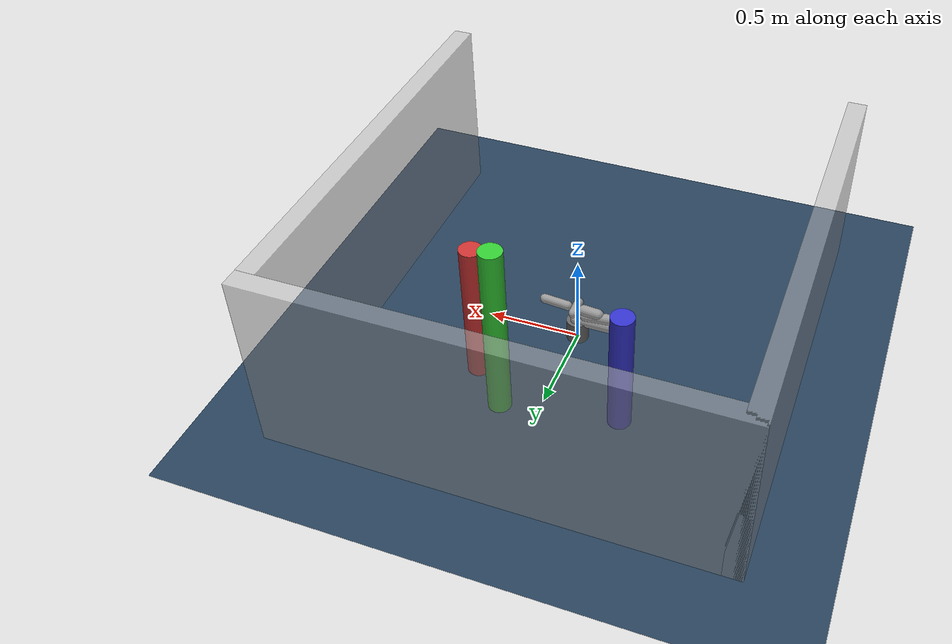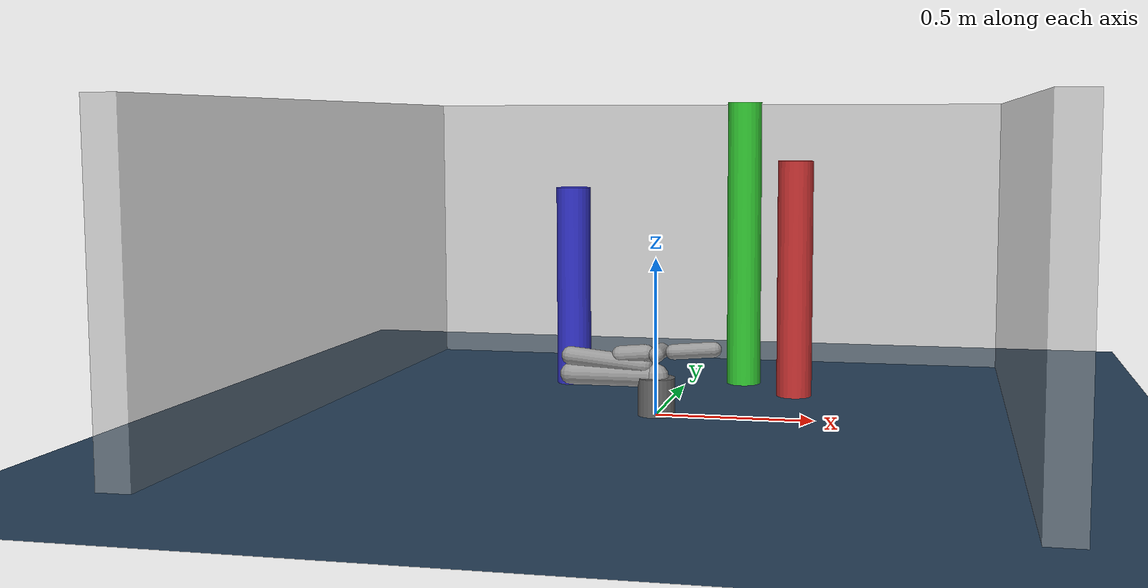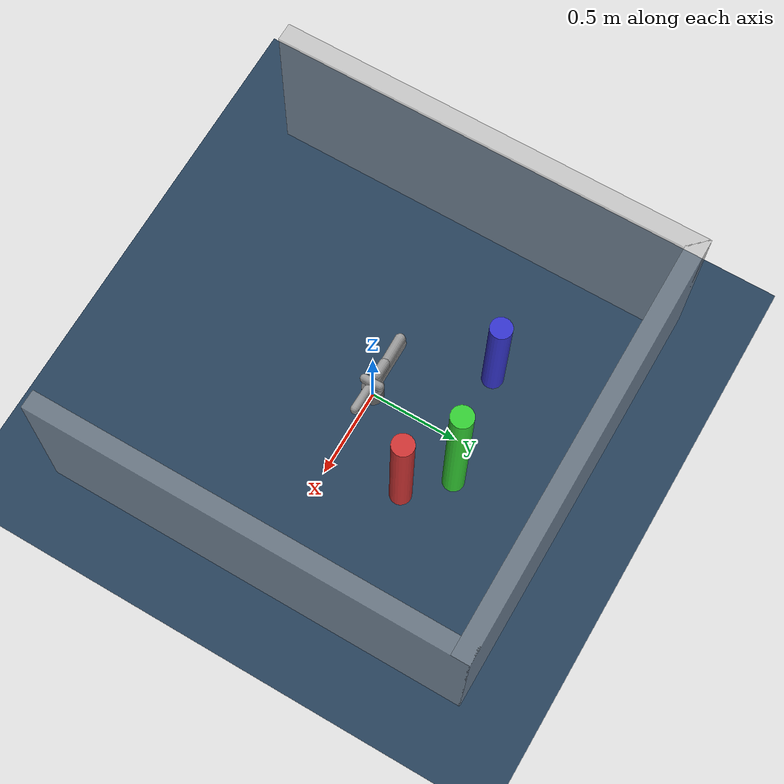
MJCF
<mujoco model="piper_scene_with_obstacles">
  <include file="piper.xml"/>

  <statistic center="0 0 0.1" extent="0.4"/>

  <visual>
    <headlight diffuse="0.6 0.6 0.6" ambient="0.3 0.3 0.3" specular="0 0 0"/>
    <rgba haze="0.15 0.25 0.35 1"/>
    <global azimuth="120" elevation="-20"/>
  </visual>

  <asset>
    <texture type="skybox" builtin="gradient" rgb1="0.3 0.5 0.7" rgb2="0 0 0" width="512" height="3072"/>
    <texture type="2d" name="groundplane" builtin="checker" mark="edge" rgb1="0.2 0.3 0.4" rgb2="0.1 0.2 0.3"
      markrgb="0.8 0.8 0.8" width="300" height="300"/>
    <material name="groundplane" texture="groundplane" texuniform="true" texrepeat="5 5" reflectance="0.2"/>
    <material name="obstacle_red" rgba="0.8 0.2 0.2 1"/>
    <material name="obstacle_blue" rgba="0.2 0.2 0.8 1"/>
    <material name="obstacle_green" rgba="0.2 0.8 0.2 1"/>
  </asset>

  <worldbody>
    <light pos="0 0 1.5" dir="0 0 -1" directional="true"/>
    <geom name="floor" size="0 0 0.05" type="plane" material="groundplane"/>

    <body name="wall_y_pos" pos="0 1.15 0.5">
      <geom name="wall_y" type="box" size="1.2 0.05 0.5" rgba="0.7 0.7 0.7 0.5"/>
    </body>

    <body name="wall_x_pos" pos="1.15 0 0.5">
      <geom name="wall_x_pos" type="box" size="0.05 1.2 0.5" rgba="0.7 0.7 0.7 0.5"/>
    </body>

    <body name="wall_x_neg" pos="-1.15 0 0.5">
      <geom name="wall_x_neg" type="box" size="0.05 1.2 0.5" rgba="0.7 0.7 0.7 0.5"/>
    </body>

    <body name="pillar1" pos="0.4 0.4 0.4">
      <geom name="pillar1" type="cylinder" size="0.06 0.4" material="obstacle_red"/>
    </body>

    <body name="pillar2" pos="-0.4 0.5 0.35">
      <geom name="pillar2" type="cylinder" size="0.06 0.35" material="obstacle_blue"/>
    </body>

    <body name="pillar3" pos="0.2 0.6 0.5">
      <geom name="pillar3" type="cylinder" size="0.06 0.5" material="obstacle_green"/>
    </body>
  </worldbody>
</mujoco>

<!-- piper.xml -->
<mujoco model="piper_description">
  <compiler angle="radian"/>

  <option integrator="implicitfast"/>

  <default>
    <default class="piper">
      <joint frictionloss="0.3" armature="0.005"/>
      <position inheritrange="1" forcerange="-100 100"/>
      <geom type="capsule" rgba="0.6 0.6 0.6 1"/>
    </default>
  </default>

  <worldbody>
    <light name="spotlight" mode="targetbodycom" target="link6" pos="0 0 2"/>
    <body name="base_link" childclass="piper" gravcomp="1">
      <inertial pos="0 0 0.04" mass="0.16" diaginertia="0.0002 0.0002 0.0002"/>
      <geom type="cylinder" size="0.06 0.06" pos="0 0 0.06" rgba="0.4 0.4 0.4 1"/>
      <body name="link1" pos="0 0 0.123" quat="0.707105 0 0 -0.707108" gravcomp="1">
        <inertial pos="0 0 -0.01" mass="0.1" diaginertia="0.00008 0.00008 0.00008"/>
        <joint name="joint1" axis="0 0 1" range="-2.618 2.618"/>
        <geom size="0.04 0.05" pos="0 0 -0.05"/>
        <body name="link2" quat="0.499998 0.5 -0.500002 -0.5" gravcomp="1">
          <inertial pos="0.15 0 0" mass="0.29" diaginertia="0.001 0.001 0.0001"/>
          <joint name="joint2" axis="0 0 1" range="0 3.14"/>
          <geom size="0.035 0.14" pos="0.14 0 0" quat="0.707105 0 0.707108 0"/>
          <body name="link3" pos="0.28358 0.028726 0" quat="0.998726 0 0 0.0504536" gravcomp="1">
            <inertial pos="-0.1 0.035 0" mass="0.29" diaginertia="0.0002 0.0002 0.0001"/>
            <joint name="joint3" axis="0 0 1" range="-2.697 0"/>
            <geom size="0.03 0.12" pos="-0.12 0.03 0" quat="0.707105 0 0.707108 0"/>
            <body name="link4" pos="-0.24221 0.068514 0" quat="0.544767 -0.544769 -0.450809 0.450808" gravcomp="1">
              <inertial pos="0 0 -0.005" mass="0.13" diaginertia="0.00004 0.00004 0.00004"/>
              <joint name="joint4" axis="0 0 1" range="-1.832 1.832"/>
              <geom size="0.03 0.04" pos="0 0 -0.04"/>
              <body name="link5" quat="0.707105 0.707108 0 0" gravcomp="1">
                <inertial pos="0 0.057 0" mass="0.14" diaginertia="0.001 0.001 0.001"/>
                <joint name="joint5" axis="0 0 1" range="-1.22 1.22"/>
                <geom size="0.025 0.045" pos="0 0.045 0" quat="0.707105 0 0 0.707108"/>
                <body name="link6" pos="0 0.091 0.0014165" quat="0 0 -0.707105 -0.707108" gravcomp="1">
                  <inertial pos="0 0 0.07" mass="0.15" diaginertia="0.001 0.001 0.001"/>
                  <joint name="joint6" axis="0 0 1" range="-3.14 3.14"/>
                  <geom size="0.025 0.065" pos="0 0 0.065"/>
                  <site name="ee_site" pos="0 0 0.135" size="0.01"/>
                </body>
              </body>
            </body>
          </body>
        </body>
      </body>
    </body>
  </worldbody>

  <contact>
    <exclude body1="base_link" body2="link1"/>
  </contact>

  <actuator>
    <position name="joint1" joint="joint1" class="piper" kp="80" kv="5"/>
    <position name="joint2" joint="joint2" class="piper" kp="80" kv="5"/>
    <position name="joint3" joint="joint3" class="piper" kp="80" kv="5"/>
    <position name="joint4" joint="joint4" class="piper" kp="40" kv="5"/>
    <position name="joint5" joint="joint5" class="piper" kp="10" kv="1.5"/>
    <position name="joint6" joint="joint6" class="piper" kp="10" kv="1.5"/>
  </actuator>

  <keyframe>
    <key name="home" qpos="0 1.57 -1.3485 0 0 0" ctrl="0 1.57 -1.3485 0 0 0"/>
  </keyframe>
</mujoco>
